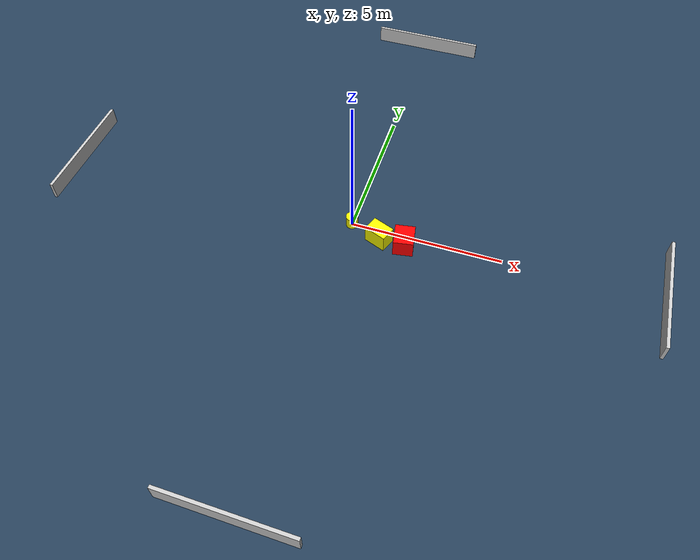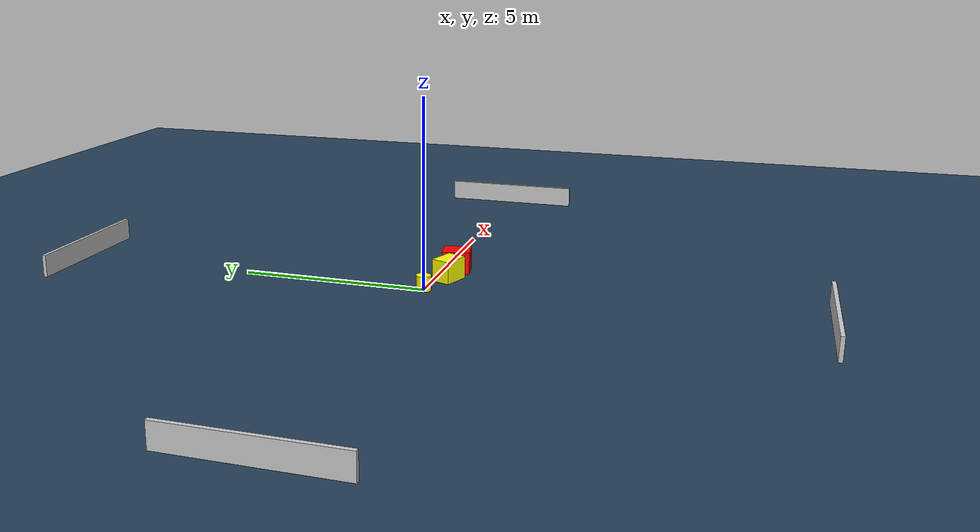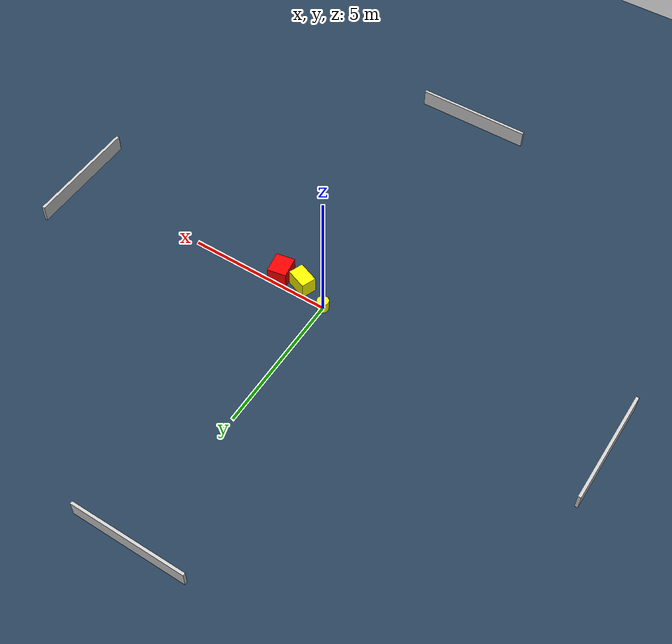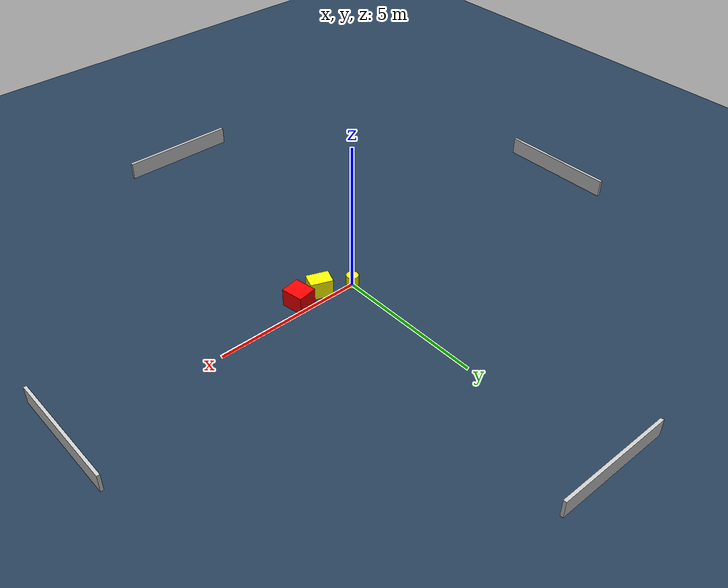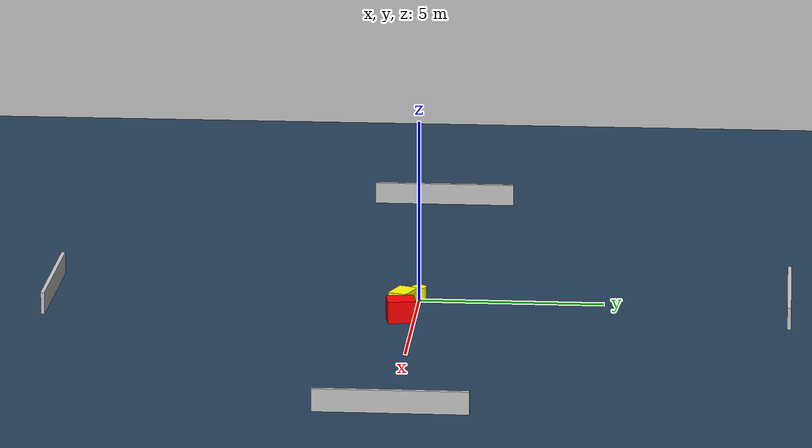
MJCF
<?xml version="1.0" ?>
<mujoco model="generated_environment">
  <option timestep="0.01" integrator="RK4" cone="elliptic"/>
  <default>
    <geom density="1"/>
  </default>
  <asset>
    <texture builtin="gradient" height="3072" name="skybox" rgb1="0.3 0.5 0.7" rgb2="0 0 0" type="skybox" width="512"/>
    <texture builtin="checker" height="300" name="groundplane" rgb1="0.2 0.3 0.4" rgb2="0.1 0.2 0.3" type="2d" width="300"/>
    <material name="groundplane" reflectance="0.2" texrepeat="5 5" texture="groundplane"/>
  </asset>
  <worldbody>
    <light dir="0 0 -1" directional="true" pos="0 0 1.5"/>
    <geom condim="3" friction="0.5 0.005 0.001" material="groundplane" name="floor" pos="0 0 0" size="0 0 0.05" type="plane"/>
    <body name="walls">
      <geom name="wall_1" condim="4" pos="-10.0 0.0 0.3" rgba="0.800000011920929 0.800000011920929 0.800000011920929 1.0" size="0.05 2.0 0.3" type="box"/>
      <geom name="wall_2" condim="4" pos="10.0 0.0 0.3" rgba="0.800000011920929 0.800000011920929 0.800000011920929 1.0" size="0.05 2.0 0.3" type="box"/>
      <geom name="wall_3" condim="4" pos="0.0 -10.0 0.3" rgba="0.800000011920929 0.800000011920929 0.800000011920929 1.0" size="2.0 0.05 0.3" type="box"/>
      <geom name="wall_4" condim="4" pos="0.0 10.0 0.3" rgba="0.800000011920929 0.800000011920929 0.800000011920929 1.0" size="2.0 0.05 0.3" type="box"/>
    </body>
    <body name="robot">
      <joint name="joint_x" type="slide" pos="0 0 0" axis="1 0 0"/>
      <joint name="joint_y" type="slide" pos="0 0 0" axis="0 1 0"/>
      <geom name="robot" type="cylinder" pos="0.0 0.0 0.2" size="0.2 0.2 0.0" mass="5.0" friction="1.0 0.005 0.0001" condim="4" rgba="1.0 1.0 0.0 1.0"/>
    </body>
    <body name="obstacle_1_movable">
      <geom name="obstacle_1_movable" condim="4" pos="1.0381815007921738 -0.3678786066704345 0.3" euler="0 0 248.90609083810537" friction="0.0 0.005 0.001" rgba="1.0 1.0 0.0 1.0" size="0.25949917781326715 0.3707737502607973 0.3" type="box" mass="0.1"/>
      <joint type="free"/>
    </body>
    <body name="obstacle_2_static">
      <geom name="obstacle_2_static" condim="4" pos="1.8643749215850771 -0.3616615824445712 0.3" euler="0 0 189.73461829582448" friction="0.0 0.005 0.001" rgba="1.0 0.0 0.0 1.0" size="0.3253576790773248 0.37276999537338307 0.3" type="box"/>
    </body>
  </worldbody>
  <actuator>
    <motor name="actuator_x" joint="joint_x" gear="1" ctrlrange="-1 1"/>
    <motor name="actuator_y" joint="joint_y" gear="1" ctrlrange="-1 1"/>
  </actuator>
</mujoco>
